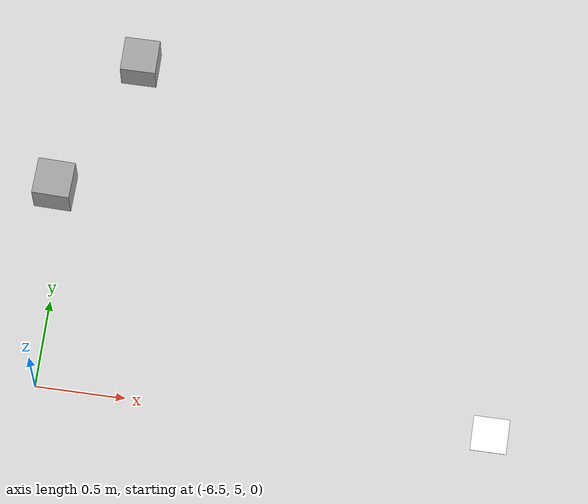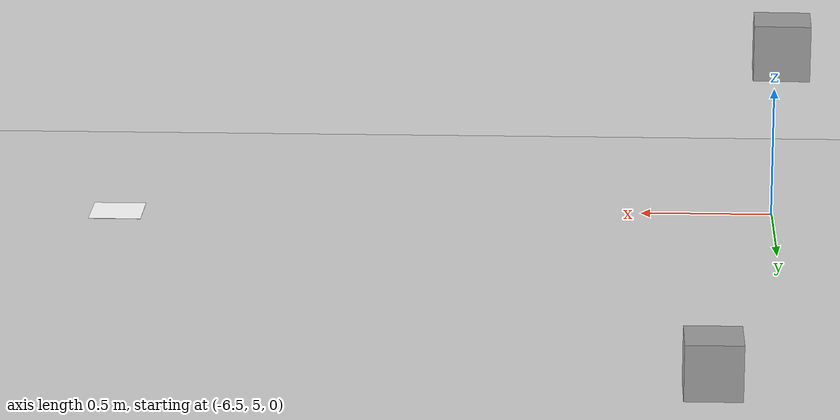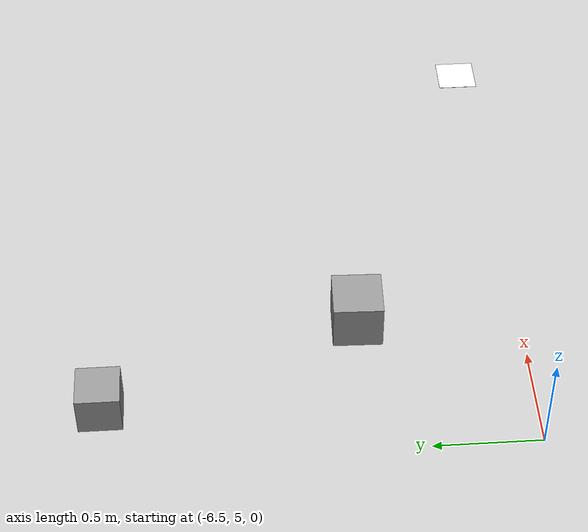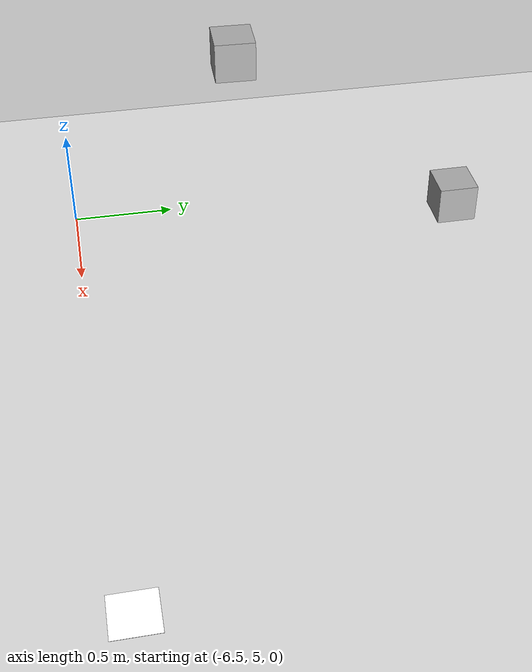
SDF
<sdf version="1.7">
 <world name="default">
  <model name="ground_plane">
   <static>1</static>
   <link name="link">
    <collision name="collision">
     <geometry><plane><normal>0 0 1</normal><size>100 100</size></plane></geometry>
     <surface>
      <contact><collide_bitmask>65535</collide_bitmask></contact>
      <friction><ode><mu>100</mu><mu2>50</mu2></ode></friction>
     </surface>
    </collision>
    <visual name="visual">
     <cast_shadows>0</cast_shadows>
     <geometry><plane><normal>0 0 1</normal><size>100 100</size></plane></geometry>
     <material>
      <script><uri>file://media/materials/scripts/gazebo.material</uri><name>Gazebo/Grey</name></script>
     </material>
    </visual>
   </link>
  </model>
  <model name="marker11_box">
   <link name="marker">
    <inertial>
     <mass>0.1</mass>
     <inertia><ixx>0</ixx><ixy>0</ixy><ixz>0</ixz><iyy>0</iyy><iyz>0</iyz><izz>0</izz></inertia>
    </inertial>
    <self_collide>1</self_collide>
    <pose>-0.76428 -0.101106 0.120004 -0.015494 1.56996 -0.015507</pose>
    <visual name="visual">
     <geometry><box><size>0.2 0.2 0.001</size></box></geometry>
     <material>
      <script>
       <uri>model://marker11/material/scripts</uri>
       <uri>model://marker11/material/textures</uri>
       <name>Aruco/marker11</name>
      </script>
      <shader type="pixel"><normal_map>__default__</normal_map></shader>
      <emissive>0 0 0 1</emissive>
      <ambient>1 1 1 1</ambient>
      <diffuse>1 1 1 1</diffuse>
      <specular>0 0 0 1</specular>
     </material>
    </visual>
    <collision name="collision">
     <geometry><box><size>0.2 0.2 0.02</size></box></geometry>
     <surface>
      <friction>
       <ode><mu>1</mu><mu2>1</mu2><fdir1>0 0 0</fdir1><slip1>0</slip1><slip2>0</slip2></ode>
       <torsional>
        <coefficient>1</coefficient>
        <patch_radius>0</patch_radius>
        <surface_radius>0</surface_radius>
        <use_patch_radius>1</use_patch_radius>
        <ode><slip>0</slip></ode>
       </torsional>
      </friction>
      <bounce><restitution_coefficient>0</restitution_coefficient><threshold>1e+06</threshold></bounce>
      <contact>
       <collide_without_contact>0</collide_without_contact>
       <collide_without_contact_bitmask>1</collide_without_contact_bitmask>
       <collide_bitmask>1</collide_bitmask>
       <ode>
        <soft_cfm>0</soft_cfm>
        <soft_erp>0.2</soft_erp>
        <kp>1e+13</kp>
        <kd>1</kd>
        <max_vel>0.01</max_vel>
        <min_depth>0</min_depth>
       </ode>
       <bullet>
        <split_impulse>1</split_impulse>
        <split_impulse_penetration_threshold>-0.01</split_impulse_penetration_threshold>
        <soft_cfm>0</soft_cfm>
        <soft_erp>0.2</soft_erp>
        <kp>1e+13</kp>
        <kd>1</kd>
       </bullet>
      </contact>
     </surface>
    </collision>
   </link>
   <link name="link_1">
    <inertial>
     <mass>1</mass>
     <inertia>
      <ixx>0.166667</ixx>
      <ixy>0</ixy>
      <ixz>0</ixz>
      <iyy>0.166667</iyy>
      <iyz>0</iyz>
      <izz>0.166667</izz>
     </inertia>
    </inertial>
    <pose>-0.86428 -0.101106 0.12 -1.3e-05 -4.2e-05 0</pose>
    <visual name="visual">
     <geometry><box><size>0.2 0.2 0.2</size></box></geometry>
     <material>
      <lighting>1</lighting>
      <script><uri>file://media/materials/scripts/gazebo.material</uri><name>Gazebo/Grey</name></script>
      <shader type="pixel"><normal_map>__default__</normal_map></shader>
      <emissive>0 0 0 1</emissive>
      <ambient>0.3 0.3 0.3 1</ambient>
      <diffuse>0.7 0.7 0.7 1</diffuse>
      <specular>0.01 0.01 0.01 1</specular>
     </material>
    </visual>
    <collision name="collision">
     <geometry><box><size>0.2 0.2 0.2</size></box></geometry>
     <surface>
      <friction>
       <ode><mu>1</mu><mu2>1</mu2><fdir1>0 0 0</fdir1><slip1>0</slip1><slip2>0</slip2></ode>
       <torsional>
        <coefficient>1</coefficient>
        <patch_radius>0</patch_radius>
        <surface_radius>0</surface_radius>
        <use_patch_radius>1</use_patch_radius>
        <ode><slip>0</slip></ode>
       </torsional>
      </friction>
      <bounce><restitution_coefficient>0</restitution_coefficient><threshold>1e+06</threshold></bounce>
      <contact>
       <collide_without_contact>0</collide_without_contact>
       <collide_without_contact_bitmask>1</collide_without_contact_bitmask>
       <collide_bitmask>1</collide_bitmask>
       <ode>
        <soft_cfm>0</soft_cfm>
        <soft_erp>0.2</soft_erp>
        <kp>1e+13</kp>
        <kd>1</kd>
        <max_vel>0.01</max_vel>
        <min_depth>0</min_depth>
       </ode>
       <bullet>
        <split_impulse>1</split_impulse>
        <split_impulse_penetration_threshold>-0.01</split_impulse_penetration_threshold>
        <soft_cfm>0</soft_cfm>
        <soft_erp>0.2</soft_erp>
        <kp>1e+13</kp>
        <kd>1</kd>
       </bullet>
      </contact>
     </surface>
    </collision>
   </link>
   <joint name="link_1_JOINT_3" type="fixed">
    <parent>link_1</parent>
    <child>marker</child>
    <physics>
     <ode><limit><cfm>0</cfm><erp>0.2</erp></limit><suspension><cfm>0</cfm><erp>0.2</erp></suspension></ode>
    </physics>
   </joint>
   <static>0</static>
   <pose>-5.35349 7.06652 -0.020008 1.4e-05 1.8e-05 0.000725</pose>
  </model>
  <model name="marker37_box">
   <link name="marker">
    <inertial>
     <mass>0.1</mass>
     <inertia><ixx>0</ixx><ixy>0</ixy><ixz>0</ixz><iyy>0</iyy><iyz>0</iyz><izz>0</izz></inertia>
    </inertial>
    <self_collide>1</self_collide>
    <pose>-0.76428 -0.101106 0.120004 -0.015494 1.56996 -0.015507</pose>
    <visual name="visual">
     <geometry><box><size>0.2 0.2 0.001</size></box></geometry>
     <material>
      <script>
       <uri>model://marker37/material/scripts</uri>
       <uri>model://marker37/material/textures</uri>
       <name>Aruco/marker37</name>
      </script>
      <shader type="pixel"><normal_map>__default__</normal_map></shader>
      <emissive>0 0 0 1</emissive>
      <ambient>1 1 1 1</ambient>
      <diffuse>1 1 1 1</diffuse>
      <specular>0 0 0 1</specular>
     </material>
    </visual>
    <collision name="collision">
     <geometry><box><size>0.2 0.2 0.02</size></box></geometry>
     <surface>
      <friction>
       <ode><mu>1</mu><mu2>1</mu2><fdir1>0 0 0</fdir1><slip1>0</slip1><slip2>0</slip2></ode>
       <torsional>
        <coefficient>1</coefficient>
        <patch_radius>0</patch_radius>
        <surface_radius>0</surface_radius>
        <use_patch_radius>1</use_patch_radius>
        <ode><slip>0</slip></ode>
       </torsional>
      </friction>
      <bounce><restitution_coefficient>0</restitution_coefficient><threshold>1e+06</threshold></bounce>
      <contact>
       <collide_without_contact>0</collide_without_contact>
       <collide_without_contact_bitmask>1</collide_without_contact_bitmask>
       <collide_bitmask>1</collide_bitmask>
       <ode>
        <soft_cfm>0</soft_cfm>
        <soft_erp>0.2</soft_erp>
        <kp>1e+13</kp>
        <kd>1</kd>
        <max_vel>0.01</max_vel>
        <min_depth>0</min_depth>
       </ode>
       <bullet>
        <split_impulse>1</split_impulse>
        <split_impulse_penetration_threshold>-0.01</split_impulse_penetration_threshold>
        <soft_cfm>0</soft_cfm>
        <soft_erp>0.2</soft_erp>
        <kp>1e+13</kp>
        <kd>1</kd>
       </bullet>
      </contact>
     </surface>
    </collision>
   </link>
   <link name="link_1">
    <inertial>
     <mass>1</mass>
     <inertia>
      <ixx>0.166667</ixx>
      <ixy>0</ixy>
      <ixz>0</ixz>
      <iyy>0.166667</iyy>
      <iyz>0</iyz>
      <izz>0.166667</izz>
     </inertia>
    </inertial>
    <pose>-0.86428 -0.101106 0.12 -1.3e-05 -4.2e-05 0</pose>
    <visual name="visual">
     <geometry><box><size>0.2 0.2 0.2</size></box></geometry>
     <material>
      <lighting>1</lighting>
      <script><uri>file://media/materials/scripts/gazebo.material</uri><name>Gazebo/Grey</name></script>
      <shader type="pixel"><normal_map>__default__</normal_map></shader>
      <emissive>0 0 0 1</emissive>
      <ambient>0.3 0.3 0.3 1</ambient>
      <diffuse>0.7 0.7 0.7 1</diffuse>
      <specular>0.01 0.01 0.01 1</specular>
     </material>
    </visual>
    <collision name="collision">
     <geometry><box><size>0.2 0.2 0.2</size></box></geometry>
     <surface>
      <friction>
       <ode><mu>1</mu><mu2>1</mu2><fdir1>0 0 0</fdir1><slip1>0</slip1><slip2>0</slip2></ode>
       <torsional>
        <coefficient>1</coefficient>
        <patch_radius>0</patch_radius>
        <surface_radius>0</surface_radius>
        <use_patch_radius>1</use_patch_radius>
        <ode><slip>0</slip></ode>
       </torsional>
      </friction>
      <bounce><restitution_coefficient>0</restitution_coefficient><threshold>1e+06</threshold></bounce>
      <contact>
       <collide_without_contact>0</collide_without_contact>
       <collide_without_contact_bitmask>1</collide_without_contact_bitmask>
       <collide_bitmask>1</collide_bitmask>
       <ode>
        <soft_cfm>0</soft_cfm>
        <soft_erp>0.2</soft_erp>
        <kp>1e+13</kp>
        <kd>1</kd>
        <max_vel>0.01</max_vel>
        <min_depth>0</min_depth>
       </ode>
       <bullet>
        <split_impulse>1</split_impulse>
        <split_impulse_penetration_threshold>-0.01</split_impulse_penetration_threshold>
        <soft_cfm>0</soft_cfm>
        <soft_erp>0.2</soft_erp>
        <kp>1e+13</kp>
        <kd>1</kd>
       </bullet>
      </contact>
     </surface>
    </collision>
   </link>
   <joint name="link_1_JOINT_3" type="fixed">
    <parent>link_1</parent>
    <child>marker</child>
    <physics>
     <ode><limit><cfm>0</cfm><erp>0.2</erp></limit><suspension><cfm>0</cfm><erp>0.2</erp></suspension></ode>
    </physics>
   </joint>
   <static>0</static>
   <pose>-5.60972 5.93035 0.779965 6e-06 4.2e-05 -0.02654</pose>
  </model>
  <model name="marker17_0.2">
   <link name="marker">
    <inertial>
     <mass>0.1</mass>
     <inertia><ixx>0</ixx><ixy>0</ixy><ixz>0</ixz><iyy>0</iyy><iyz>0</iyz><izz>0</izz></inertia>
    </inertial>
    <self_collide>1</self_collide>
    <visual name="visual">
     <geometry><box><size>0.2 0.2 0.001</size></box></geometry>
     <material>
      <script>
       <uri>model://marker17/material/scripts</uri>
       <uri>model://marker17/material/textures</uri>
       <name>Aruco/marker17</name>
      </script>
      <shader type="pixel"><normal_map>__default__</normal_map></shader>
      <ambient>1 1 1 1</ambient>
      <diffuse>1 1 1 1</diffuse>
      <specular>0 0 0 1</specular>
      <emissive>0 0 0 1</emissive>
     </material>
    </visual>
    <collision name="collision">
     <geometry><box><size>0.047434 0.043848 0.02</size></box></geometry>
     <surface>
      <friction>
       <ode><mu>1</mu><mu2>1</mu2><fdir1>0 0 0</fdir1><slip1>0</slip1><slip2>0</slip2></ode>
       <torsional>
        <coefficient>1</coefficient>
        <patch_radius>0</patch_radius>
        <surface_radius>0</surface_radius>
        <use_patch_radius>1</use_patch_radius>
        <ode><slip>0</slip></ode>
       </torsional>
      </friction>
      <bounce><restitution_coefficient>0</restitution_coefficient><threshold>1e+06</threshold></bounce>
      <contact>
       <collide_without_contact>0</collide_without_contact>
       <collide_without_contact_bitmask>1</collide_without_contact_bitmask>
       <collide_bitmask>1</collide_bitmask>
       <ode>
        <soft_cfm>0</soft_cfm>
        <soft_erp>0.2</soft_erp>
        <kp>1e+13</kp>
        <kd>1</kd>
        <max_vel>0.01</max_vel>
        <min_depth>0</min_depth>
       </ode>
       <bullet>
        <split_impulse>1</split_impulse>
        <split_impulse_penetration_threshold>-0.01</split_impulse_penetration_threshold>
        <soft_cfm>0</soft_cfm>
        <soft_erp>0.2</soft_erp>
        <kp>1e+13</kp>
        <kd>1</kd>
       </bullet>
      </contact>
     </surface>
    </collision>
   </link>
   <static>0</static>
   <pose>-3.9887 5.07256 0.01 0 1e-06 0</pose>
  </model>
 </world>
</sdf>
